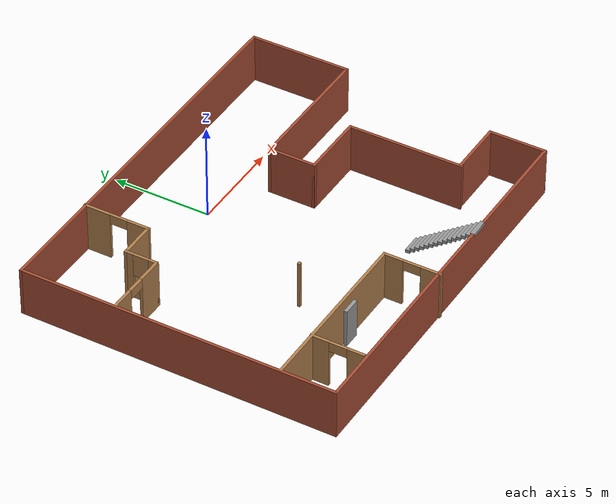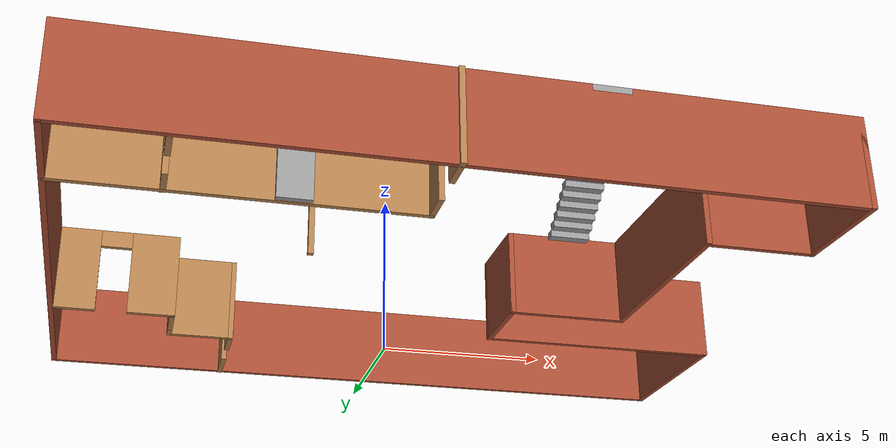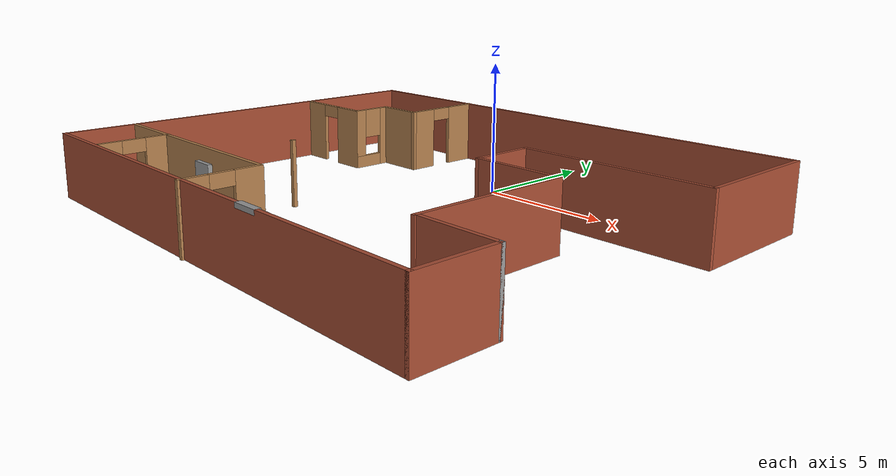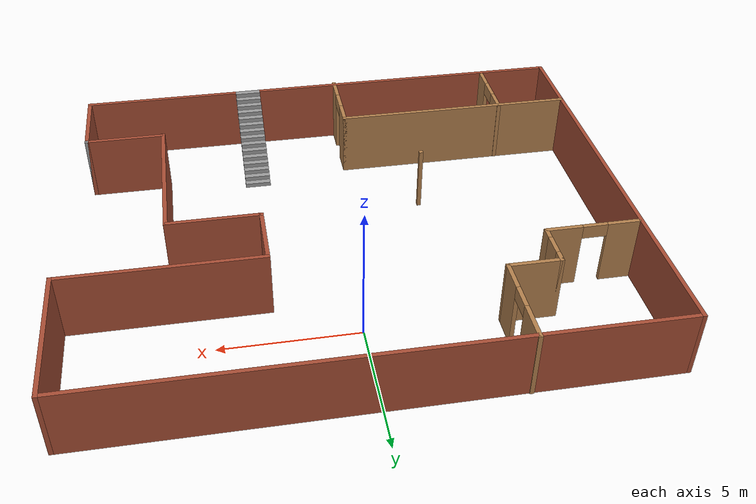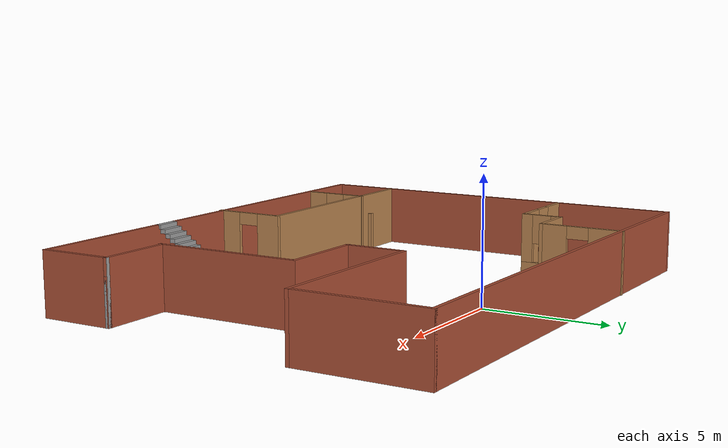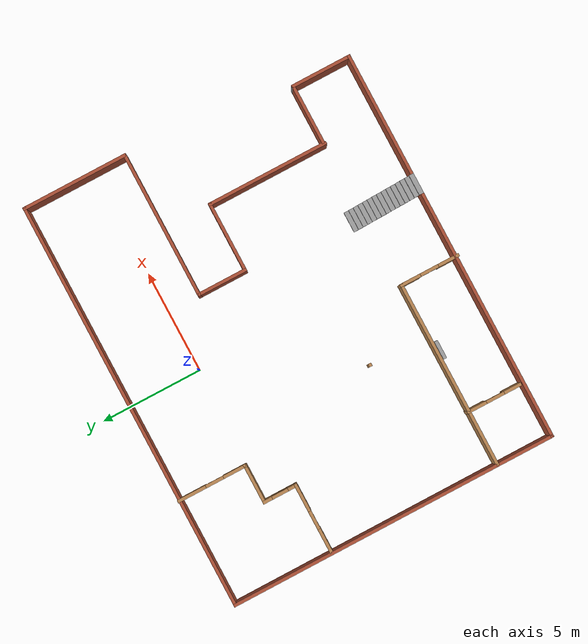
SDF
<?xml version='1.0'?>
<sdf version='1.7'>
  <model name='KoLabHouse'>
    <pose>-0.015702 -4.57944 0 0 -0 0</pose>
    <link name='Door_3'>
      <collision name='Door_3_Collision'>
        <geometry>
          <box>
            <size>0.9 0.17 2</size>
          </box>
        </geometry>
        <pose>0 0 1 0 -0 0</pose>
      </collision>
      <visual name='Door_3_Visual'>
        <pose>0 0 1 0 -0 0</pose>
        <geometry>
          <box>
            <size>0.9 0.17 2</size>
          </box>
        </geometry>
        <material>
          <script>
            <uri>file://media/materials/scripts/gazebo.material</uri>
            <name>Gazebo/Grey</name>
          </script>
        </material>
      </visual>
      <pose>-4.31656 -5.45643 0 0 -0 0</pose>
    </link>
    <link name='Stairs_0'>
      <visual name='Stairs_0_Visual_0'>
        <pose>2.76269 -4.71817 0.083333 0 -0 0</pose>
        <geometry>
          <box>
            <size>1 0.233333 0.166667</size>
          </box>
        </geometry>
        <material>
          <script>
            <uri>file://media/materials/scripts/gazebo.material</uri>
            <name>Gazebo/Grey</name>
          </script>
          <ambient>1 1 1 1</ambient>
        </material>
        <meta>
          <layer>0</layer>
        </meta>
      </visual>
      <collision name='Stairs_0_Collision_0'>
        <geometry>
          <box>
            <size>1 0.233333 0.166667</size>
          </box>
        </geometry>
        <pose>2.76269 -4.71817 0.083333 0 -0 0</pose>
      </collision>
      <visual name='Stairs_0_Visual_1'>
        <pose>2.76269 -4.95151 0.25 0 -0 0</pose>
        <geometry>
          <box>
            <size>1 0.233333 0.166667</size>
          </box>
        </geometry>
        <material>
          <script>
            <uri>file://media/materials/scripts/gazebo.material</uri>
            <name>Gazebo/Grey</name>
          </script>
          <ambient>1 1 1 1</ambient>
        </material>
        <meta>
          <layer>0</layer>
        </meta>
      </visual>
      <collision name='Stairs_0_Collision_1'>
        <geometry>
          <box>
            <size>1 0.233333 0.166667</size>
          </box>
        </geometry>
        <pose>2.76269 -4.95151 0.25 0 -0 0</pose>
      </collision>
      <visual name='Stairs_0_Visual_2'>
        <pose>2.76269 -5.18484 0.416667 0 -0 0</pose>
        <geometry>
          <box>
            <size>1 0.233333 0.166667</size>
          </box>
        </geometry>
        <material>
          <script>
            <uri>file://media/materials/scripts/gazebo.material</uri>
            <name>Gazebo/Grey</name>
          </script>
          <ambient>1 1 1 1</ambient>
        </material>
        <meta>
          <layer>0</layer>
        </meta>
      </visual>
      <collision name='Stairs_0_Collision_2'>
        <geometry>
          <box>
            <size>1 0.233333 0.166667</size>
          </box>
        </geometry>
        <pose>2.76269 -5.18484 0.416667 0 -0 0</pose>
      </collision>
      <visual name='Stairs_0_Visual_3'>
        <pose>2.76269 -5.41817 0.583333 0 -0 0</pose>
        <geometry>
          <box>
            <size>1 0.233333 0.166667</size>
          </box>
        </geometry>
        <material>
          <script>
            <uri>file://media/materials/scripts/gazebo.material</uri>
            <name>Gazebo/Grey</name>
          </script>
          <ambient>1 1 1 1</ambient>
        </material>
        <meta>
          <layer>0</layer>
        </meta>
      </visual>
      <collision name='Stairs_0_Collision_3'>
        <geometry>
          <box>
            <size>1 0.233333 0.166667</size>
          </box>
        </geometry>
        <pose>2.76269 -5.41817 0.583333 0 -0 0</pose>
      </collision>
      <visual name='Stairs_0_Visual_4'>
        <pose>2.76269 -5.65151 0.75 0 -0 0</pose>
        <geometry>
          <box>
            <size>1 0.233333 0.166667</size>
          </box>
        </geometry>
        <material>
          <script>
            <uri>file://media/materials/scripts/gazebo.material</uri>
            <name>Gazebo/Grey</name>
          </script>
          <ambient>1 1 1 1</ambient>
        </material>
        <meta>
          <layer>0</layer>
        </meta>
      </visual>
      <collision name='Stairs_0_Collision_4'>
        <geometry>
          <box>
            <size>1 0.233333 0.166667</size>
          </box>
        </geometry>
        <pose>2.76269 -5.65151 0.75 0 -0 0</pose>
      </collision>
      <visual name='Stairs_0_Visual_5'>
        <pose>2.76269 -5.88484 0.916667 0 -0 0</pose>
        <geometry>
          <box>
            <size>1 0.233333 0.166667</size>
          </box>
        </geometry>
        <material>
          <script>
            <uri>file://media/materials/scripts/gazebo.material</uri>
            <name>Gazebo/Grey</name>
          </script>
          <ambient>1 1 1 1</ambient>
        </material>
        <meta>
          <layer>0</layer>
        </meta>
      </visual>
      <collision name='Stairs_0_Collision_5'>
        <geometry>
          <box>
            <size>1 0.233333 0.166667</size>
          </box>
        </geometry>
        <pose>2.76269 -5.88484 0.916667 0 -0 0</pose>
      </collision>
      <visual name='Stairs_0_Visual_6'>
        <pose>2.76269 -6.11817 1.08333 0 -0 0</pose>
        <geometry>
          <box>
            <size>1 0.233333 0.166667</size>
          </box>
        </geometry>
        <material>
          <script>
            <uri>file://media/materials/scripts/gazebo.material</uri>
            <name>Gazebo/Grey</name>
          </script>
          <ambient>1 1 1 1</ambient>
        </material>
        <meta>
          <layer>0</layer>
        </meta>
      </visual>
      <collision name='Stairs_0_Collision_6'>
        <geometry>
          <box>
            <size>1 0.233333 0.166667</size>
          </box>
        </geometry>
        <pose>2.76269 -6.11817 1.08333 0 -0 0</pose>
      </collision>
      <visual name='Stairs_0_Visual_7'>
        <pose>2.76269 -6.35151 1.25 0 -0 0</pose>
        <geometry>
          <box>
            <size>1 0.233333 0.166667</size>
          </box>
        </geometry>
        <material>
          <script>
            <uri>file://media/materials/scripts/gazebo.material</uri>
            <name>Gazebo/Grey</name>
          </script>
          <ambient>1 1 1 1</ambient>
        </material>
        <meta>
          <layer>0</layer>
        </meta>
      </visual>
      <collision name='Stairs_0_Collision_7'>
        <geometry>
          <box>
            <size>1 0.233333 0.166667</size>
          </box>
        </geometry>
        <pose>2.76269 -6.35151 1.25 0 -0 0</pose>
      </collision>
      <visual name='Stairs_0_Visual_8'>
        <pose>2.76269 -6.58484 1.41667 0 -0 0</pose>
        <geometry>
          <box>
            <size>1 0.233333 0.166667</size>
          </box>
        </geometry>
        <material>
          <script>
            <uri>file://media/materials/scripts/gazebo.material</uri>
            <name>Gazebo/Grey</name>
          </script>
          <ambient>1 1 1 1</ambient>
        </material>
        <meta>
          <layer>0</layer>
        </meta>
      </visual>
      <collision name='Stairs_0_Collision_8'>
        <geometry>
          <box>
            <size>1 0.233333 0.166667</size>
          </box>
        </geometry>
        <pose>2.76269 -6.58484 1.41667 0 -0 0</pose>
      </collision>
      <visual name='Stairs_0_Visual_9'>
        <pose>2.76269 -6.81817 1.58333 0 -0 0</pose>
        <geometry>
          <box>
            <size>1 0.233333 0.166667</size>
          </box>
        </geometry>
        <material>
          <script>
            <uri>file://media/materials/scripts/gazebo.material</uri>
            <name>Gazebo/Grey</name>
          </script>
          <ambient>1 1 1 1</ambient>
        </material>
        <meta>
          <layer>0</layer>
        </meta>
      </visual>
      <collision name='Stairs_0_Collision_9'>
        <geometry>
          <box>
            <size>1 0.233333 0.166667</size>
          </box>
        </geometry>
        <pose>2.76269 -6.81817 1.58333 0 -0 0</pose>
      </collision>
      <visual name='Stairs_0_Visual_10'>
        <pose>2.76269 -7.05151 1.75 0 -0 0</pose>
        <geometry>
          <box>
            <size>1 0.233333 0.166667</size>
          </box>
        </geometry>
        <material>
          <script>
            <uri>file://media/materials/scripts/gazebo.material</uri>
            <name>Gazebo/Grey</name>
          </script>
          <ambient>1 1 1 1</ambient>
        </material>
        <meta>
          <layer>0</layer>
        </meta>
      </visual>
      <collision name='Stairs_0_Collision_10'>
        <geometry>
          <box>
            <size>1 0.233333 0.166667</size>
          </box>
        </geometry>
        <pose>2.76269 -7.05151 1.75 0 -0 0</pose>
      </collision>
      <visual name='Stairs_0_Visual_11'>
        <pose>2.76269 -7.28484 1.91667 0 -0 0</pose>
        <geometry>
          <box>
            <size>1 0.233333 0.166667</size>
          </box>
        </geometry>
        <material>
          <script>
            <uri>file://media/materials/scripts/gazebo.material</uri>
            <name>Gazebo/Grey</name>
          </script>
          <ambient>1 1 1 1</ambient>
        </material>
        <meta>
          <layer>0</layer>
        </meta>
      </visual>
      <collision name='Stairs_0_Collision_11'>
        <geometry>
          <box>
            <size>1 0.233333 0.166667</size>
          </box>
        </geometry>
        <pose>2.76269 -7.28484 1.91667 0 -0 0</pose>
      </collision>
      <visual name='Stairs_0_Visual_12'>
        <pose>2.76269 -7.51817 2.08333 0 -0 0</pose>
        <geometry>
          <box>
            <size>1 0.233333 0.166667</size>
          </box>
        </geometry>
        <material>
          <script>
            <uri>file://media/materials/scripts/gazebo.material</uri>
            <name>Gazebo/Grey</name>
          </script>
          <ambient>1 1 1 1</ambient>
        </material>
        <meta>
          <layer>0</layer>
        </meta>
      </visual>
      <collision name='Stairs_0_Collision_12'>
        <geometry>
          <box>
            <size>1 0.233333 0.166667</size>
          </box>
        </geometry>
        <pose>2.76269 -7.51817 2.08333 0 -0 0</pose>
      </collision>
      <visual name='Stairs_0_Visual_13'>
        <pose>2.76269 -7.75151 2.25 0 -0 0</pose>
        <geometry>
          <box>
            <size>1 0.233333 0.166667</size>
          </box>
        </geometry>
        <material>
          <script>
            <uri>file://media/materials/scripts/gazebo.material</uri>
            <name>Gazebo/Grey</name>
          </script>
          <ambient>1 1 1 1</ambient>
        </material>
        <meta>
          <layer>0</layer>
        </meta>
      </visual>
      <collision name='Stairs_0_Collision_13'>
        <geometry>
          <box>
            <size>1 0.233333 0.166667</size>
          </box>
        </geometry>
        <pose>2.76269 -7.75151 2.25 0 -0 0</pose>
      </collision>
      <visual name='Stairs_0_Visual_14'>
        <pose>2.76269 -7.98484 2.41667 0 -0 0</pose>
        <geometry>
          <box>
            <size>1 0.233333 0.166667</size>
          </box>
        </geometry>
        <material>
          <script>
            <uri>file://media/materials/scripts/gazebo.material</uri>
            <name>Gazebo/Grey</name>
          </script>
          <ambient>1 1 1 1</ambient>
        </material>
        <meta>
          <layer>0</layer>
        </meta>
      </visual>
      <collision name='Stairs_0_Collision_14'>
        <geometry>
          <box>
            <size>1 0.233333 0.166667</size>
          </box>
        </geometry>
        <pose>2.76269 -7.98484 2.41667 0 -0 0</pose>
      </collision>
    </link>
    <link name='Wall_10'>
      <collision name='Wall_10_Collision'>
        <geometry>
          <box>
            <size>3.5 0.15 2.5</size>
          </box>
        </geometry>
        <pose>0 0 1.25 0 -0 0</pose>
      </collision>
      <visual name='Wall_10_Visual'>
        <pose>0 0 1.25 0 -0 0</pose>
        <geometry>
          <box>
            <size>3.5 0.15 2.5</size>
          </box>
        </geometry>
        <material>
          <script>
            <uri>file://media/materials/scripts/gazebo.material</uri>
            <name>Gazebo/Bricks</name>
          </script>
          <ambient>1 1 1 1</ambient>
        </material>
        <meta>
          <layer>0</layer>
        </meta>
      </visual>
      <pose>4.65642 0.624103 0 0 -0 0</pose>
    </link>
    <link name='Wall_11'>
      <collision name='Wall_11_Collision'>
        <geometry>
          <box>
            <size>6 0.15 2.5</size>
          </box>
        </geometry>
        <pose>0 0 1.25 0 -0 0</pose>
      </collision>
      <visual name='Wall_11_Visual'>
        <pose>0 0 1.25 0 -0 0</pose>
        <geometry>
          <box>
            <size>6 0.15 2.5</size>
          </box>
        </geometry>
        <material>
          <script>
            <uri>file://media/materials/scripts/gazebo.material</uri>
            <name>Gazebo/Bricks</name>
          </script>
          <ambient>1 1 1 1</ambient>
        </material>
        <meta>
          <layer>0</layer>
        </meta>
      </visual>
      <pose>6.33142 -2.3009 0 0 -0 -1.5708</pose>
    </link>
    <link name='Wall_29'>
      <collision name='Wall_29_Collision'>
        <geometry>
          <box>
            <size>16.25 0.15 2.5</size>
          </box>
        </geometry>
        <pose>0 0 1.25 0 -0 0</pose>
      </collision>
      <visual name='Wall_29_Visual'>
        <pose>0 0 1.25 0 -0 0</pose>
        <geometry>
          <box>
            <size>16.25 0.15 2.5</size>
          </box>
        </geometry>
        <material>
          <script>
            <uri>file://media/materials/scripts/gazebo.material</uri>
            <name>Gazebo/Bricks</name>
          </script>
          <ambient>1 1 1 1</ambient>
        </material>
        <meta>
          <layer>0</layer>
        </meta>
      </visual>
      <pose>-10.0814 0.024103 0 0 -0 -1.5708</pose>
    </link>
    <link name='Wall_30'>
      <collision name='Wall_30_Collision'>
        <geometry>
          <box>
            <size>19.5 0.15 2.5</size>
          </box>
        </geometry>
        <pose>0 0 1.25 0 -0 0</pose>
      </collision>
      <visual name='Wall_30_Visual'>
        <pose>0 0 1.25 0 -0 0</pose>
        <geometry>
          <box>
            <size>19.5 0.15 2.5</size>
          </box>
        </geometry>
        <material>
          <script>
            <uri>file://media/materials/scripts/gazebo.material</uri>
            <name>Gazebo/Bricks</name>
          </script>
          <ambient>1 1 1 1</ambient>
        </material>
        <meta>
          <layer>0</layer>
        </meta>
      </visual>
      <pose>-0.406424 -8.0259 0 0 -0 0</pose>
    </link>
    <link name='Wall_31'>
      <collision name='Wall_31_Collision'>
        <geometry>
          <box>
            <size>3 0.15 2.5</size>
          </box>
        </geometry>
        <pose>0 0 1.25 0 -0 0</pose>
      </collision>
      <visual name='Wall_31_Visual'>
        <pose>0 0 1.25 0 -0 0</pose>
        <geometry>
          <box>
            <size>3 0.15 2.5</size>
          </box>
        </geometry>
        <material>
          <script>
            <uri>file://media/materials/scripts/gazebo.material</uri>
            <name>Gazebo/Bricks</name>
          </script>
          <ambient>1 1 1 1</ambient>
        </material>
        <meta>
          <layer>0</layer>
        </meta>
      </visual>
      <pose>9.26858 -6.6009 0 0 -0 1.5708</pose>
    </link>
    <link name='Wall_32'>
      <collision name='Wall_32_Collision'>
        <geometry>
          <box>
            <size>0.15 0.15 2.5</size>
          </box>
        </geometry>
        <pose>0 0 1.25 0 -0 0</pose>
      </collision>
      <visual name='Wall_32_Visual'>
        <pose>0 0 1.25 0 -0 0</pose>
        <geometry>
          <box>
            <size>0.15 0.15 2.5</size>
          </box>
        </geometry>
        <material>
          <script>
            <uri>file://media/materials/scripts/gazebo.material</uri>
            <name>Gazebo/Grey</name>
          </script>
          <ambient>1 1 1 1</ambient>
        </material>
        <meta>
          <layer>0</layer>
        </meta>
      </visual>
      <pose>9.26858 -5.1759 0 0 -0 0</pose>
    </link>
    <link name='Wall_37'>
      <collision name='Wall_37_Collision'>
        <geometry>
          <box>
            <size>0.15 0.15 2.5</size>
          </box>
        </geometry>
        <pose>0 0 1.25 0 -0 0</pose>
      </collision>
      <visual name='Wall_37_Visual'>
        <pose>0 0 1.25 0 -0 0</pose>
        <geometry>
          <box>
            <size>0.15 0.15 2.5</size>
          </box>
        </geometry>
        <material>
          <script>
            <uri>file://media/materials/scripts/gazebo.material</uri>
            <name>Gazebo/Wood</name>
          </script>
          <ambient>1 1 1 1</ambient>
        </material>
        <meta>
          <layer>0</layer>
        </meta>
      </visual>
      <pose>-3.43142 -2.3259 0 0 -0 0</pose>
    </link>
    <link name='Wall_44'>
      <collision name='Wall_44_Collision'>
        <geometry>
          <box>
            <size>3 0.15 2.5</size>
          </box>
        </geometry>
        <pose>0 0 1.25 0 -0 0</pose>
      </collision>
      <visual name='Wall_44_Visual'>
        <pose>0 0 1.25 0 -0 0</pose>
        <geometry>
          <box>
            <size>3 0.15 2.5</size>
          </box>
        </geometry>
        <material>
          <script>
            <uri>file://media/materials/scripts/gazebo.material</uri>
            <name>Gazebo/Bricks</name>
          </script>
          <ambient>1 1 1 1</ambient>
        </material>
        <meta>
          <layer>0</layer>
        </meta>
      </visual>
      <pose>7.84358 -5.1759 0 0 -0 3.14159</pose>
    </link>
    <link name='Wall_49'>
      <pose>-4.77775 6.43485 0 0 -0 -1.5708</pose>
      <visual name='Wall_49_Visual_0'>
        <pose>-1.03616 0 1.25 0 -0 0</pose>
        <geometry>
          <box>
            <size>1.42767 0.15 2.5</size>
          </box>
        </geometry>
        <material>
          <script>
            <uri>file://media/materials/scripts/gazebo.material</uri>
            <name>Gazebo/Wood</name>
          </script>
          <ambient>1 1 1 1</ambient>
        </material>
        <meta>
          <layer>0</layer>
        </meta>
      </visual>
      <collision name='Wall_49_Collision_0'>
        <geometry>
          <box>
            <size>1.42767 0.15 2.5</size>
          </box>
        </geometry>
        <pose>-1.03616 0 1.25 0 -0 0</pose>
      </collision>
      <visual name='Wall_49_Visual_1'>
        <pose>1.16384 0 1.25 0 -0 0</pose>
        <geometry>
          <box>
            <size>1.17233 0.15 2.5</size>
          </box>
        </geometry>
        <material>
          <script>
            <uri>file://media/materials/scripts/gazebo.material</uri>
            <name>Gazebo/Wood</name>
          </script>
          <ambient>1 1 1 1</ambient>
        </material>
        <meta>
          <layer>0</layer>
        </meta>
      </visual>
      <collision name='Wall_49_Collision_1'>
        <geometry>
          <box>
            <size>1.17233 0.15 2.5</size>
          </box>
        </geometry>
        <pose>1.16384 0 1.25 0 -0 0</pose>
      </collision>
      <visual name='Wall_49_Visual_2'>
        <pose>0.127674 0 2.25 0 -0 0</pose>
        <geometry>
          <box>
            <size>0.9 0.15 0.5</size>
          </box>
        </geometry>
        <material>
          <script>
            <uri>file://media/materials/scripts/gazebo.material</uri>
            <name>Gazebo/Wood</name>
          </script>
          <ambient>1 1 1 1</ambient>
        </material>
        <meta>
          <layer>0</layer>
        </meta>
      </visual>
      <collision name='Wall_49_Collision_2'>
        <geometry>
          <box>
            <size>0.9 0.15 0.5</size>
          </box>
        </geometry>
        <pose>0.127674 0 2.25 0 -0 0</pose>
      </collision>
    </link>
    <link name='Wall_50'>
      <collision name='Wall_50_Collision'>
        <geometry>
          <box>
            <size>2 0.15 2.5</size>
          </box>
        </geometry>
        <pose>0 0 1.25 0 -0 0</pose>
      </collision>
      <visual name='Wall_50_Visual'>
        <pose>0 0 1.25 0 -0 0</pose>
        <geometry>
          <box>
            <size>2 0.15 2.5</size>
          </box>
        </geometry>
        <material>
          <script>
            <uri>file://media/materials/scripts/gazebo.material</uri>
            <name>Gazebo/Wood</name>
          </script>
          <ambient>1 1 1 1</ambient>
        </material>
        <meta>
          <layer>0</layer>
        </meta>
      </visual>
      <pose>-5.70275 4.75985 0 0 -0 3.14159</pose>
    </link>
    <link name='Wall_51'>
      <pose>-6.62775 3.95985 0 0 -0 -1.5708</pose>
      <visual name='Wall_51_Visual_0'>
        <pose>-0.639953 0 1.25 0 -0 0</pose>
        <geometry>
          <box>
            <size>0.470095 0.15 2.5</size>
          </box>
        </geometry>
        <material>
          <script>
            <uri>file://media/materials/scripts/gazebo.material</uri>
            <name>Gazebo/Wood</name>
          </script>
          <ambient>1 1 1 1</ambient>
        </material>
        <meta>
          <layer>0</layer>
        </meta>
      </visual>
      <collision name='Wall_51_Collision_0'>
        <geometry>
          <box>
            <size>0.470095 0.15 2.5</size>
          </box>
        </geometry>
        <pose>-0.639953 0 1.25 0 -0 0</pose>
      </collision>
      <visual name='Wall_51_Visual_1'>
        <pose>0.235047 0 0.25 0 -0 0</pose>
        <geometry>
          <box>
            <size>1.27991 0.15 0.5</size>
          </box>
        </geometry>
        <material>
          <script>
            <uri>file://media/materials/scripts/gazebo.material</uri>
            <name>Gazebo/Wood</name>
          </script>
          <ambient>1 1 1 1</ambient>
        </material>
        <meta>
          <layer>0</layer>
        </meta>
      </visual>
      <collision name='Wall_51_Collision_1'>
        <geometry>
          <box>
            <size>1.27991 0.15 0.5</size>
          </box>
        </geometry>
        <pose>0.235047 0 0.25 0 -0 0</pose>
      </collision>
      <visual name='Wall_51_Visual_2'>
        <pose>0.635047 0 1.5 0 -0 0</pose>
        <geometry>
          <box>
            <size>0.479905 0.15 2</size>
          </box>
        </geometry>
        <material>
          <script>
            <uri>file://media/materials/scripts/gazebo.material</uri>
            <name>Gazebo/Wood</name>
          </script>
          <ambient>1 1 1 1</ambient>
        </material>
        <meta>
          <layer>0</layer>
        </meta>
      </visual>
      <collision name='Wall_51_Collision_2'>
        <geometry>
          <box>
            <size>0.479905 0.15 2</size>
          </box>
        </geometry>
        <pose>0.635047 0 1.5 0 -0 0</pose>
      </collision>
      <visual name='Wall_51_Visual_3'>
        <pose>-0.004905 0 1.9 0 -0 0</pose>
        <geometry>
          <box>
            <size>0.8 0.15 1.2</size>
          </box>
        </geometry>
        <material>
          <script>
            <uri>file://media/materials/scripts/gazebo.material</uri>
            <name>Gazebo/Wood</name>
          </script>
          <ambient>1 1 1 1</ambient>
        </material>
        <meta>
          <layer>0</layer>
        </meta>
      </visual>
      <collision name='Wall_51_Collision_3'>
        <geometry>
          <box>
            <size>0.8 0.15 1.2</size>
          </box>
        </geometry>
        <pose>-0.004905 0 1.9 0 -0 0</pose>
      </collision>
    </link>
    <link name='Wall_52'>
      <pose>-8.30275 3.15985 0 0 -0 3.14159</pose>
      <visual name='Wall_52_Visual_0'>
        <pose>-1.0566 0 1.25 0 -0 0</pose>
        <geometry>
          <box>
            <size>1.38679 0.15 2.5</size>
          </box>
        </geometry>
        <material>
          <script>
            <uri>file://media/materials/scripts/gazebo.material</uri>
            <name>Gazebo/Wood</name>
          </script>
          <ambient>1 1 1 1</ambient>
        </material>
        <meta>
          <layer>0</layer>
        </meta>
      </visual>
      <collision name='Wall_52_Collision_0'>
        <geometry>
          <box>
            <size>1.38679 0.15 2.5</size>
          </box>
        </geometry>
        <pose>-1.0566 0 1.25 0 -0 0</pose>
      </collision>
      <visual name='Wall_52_Visual_1'>
        <pose>1.1434 0 1.25 0 -0 0</pose>
        <geometry>
          <box>
            <size>1.21321 0.15 2.5</size>
          </box>
        </geometry>
        <material>
          <script>
            <uri>file://media/materials/scripts/gazebo.material</uri>
            <name>Gazebo/Wood</name>
          </script>
          <ambient>1 1 1 1</ambient>
        </material>
        <meta>
          <layer>0</layer>
        </meta>
      </visual>
      <collision name='Wall_52_Collision_1'>
        <geometry>
          <box>
            <size>1.21321 0.15 2.5</size>
          </box>
        </geometry>
        <pose>1.1434 0 1.25 0 -0 0</pose>
      </collision>
      <visual name='Wall_52_Visual_2'>
        <pose>0.086793 0 2.25 0 -0 0</pose>
        <geometry>
          <box>
            <size>0.9 0.15 0.5</size>
          </box>
        </geometry>
        <material>
          <script>
            <uri>file://media/materials/scripts/gazebo.material</uri>
            <name>Gazebo/Wood</name>
          </script>
          <ambient>1 1 1 1</ambient>
        </material>
        <meta>
          <layer>0</layer>
        </meta>
      </visual>
      <collision name='Wall_52_Collision_2'>
        <geometry>
          <box>
            <size>0.9 0.15 0.5</size>
          </box>
        </geometry>
        <pose>0.086793 0 2.25 0 -0 0</pose>
      </collision>
    </link>
    <link name='Wall_55'>
      <collision name='Wall_55_Collision'>
        <geometry>
          <box>
            <size>9.25 0.15 2.5</size>
          </box>
        </geometry>
        <pose>0 0 1.25 0 -0 0</pose>
      </collision>
      <visual name='Wall_55_Visual'>
        <pose>0 0 1.25 0 -0 0</pose>
        <geometry>
          <box>
            <size>9.25 0.15 2.5</size>
          </box>
        </geometry>
        <material>
          <script>
            <uri>file://media/materials/scripts/gazebo.material</uri>
            <name>Gazebo/Wood</name>
          </script>
          <ambient>1 1 1 1</ambient>
        </material>
        <meta>
          <layer>0</layer>
        </meta>
      </visual>
      <pose>-5.48373 -5.25985 0 0 -0 0</pose>
    </link>
    <link name='Wall_58'>
      <pose>-0.933727 -6.68485 0 0 -0 -1.5708</pose>
      <visual name='Wall_58_Visual_0'>
        <pose>-0.978932 0 1.25 0 -0 0</pose>
        <geometry>
          <box>
            <size>1.04214 0.15 2.5</size>
          </box>
        </geometry>
        <material>
          <script>
            <uri>file://media/materials/scripts/gazebo.material</uri>
            <name>Gazebo/Wood</name>
          </script>
          <ambient>1 1 1 1</ambient>
        </material>
        <meta>
          <layer>0</layer>
        </meta>
      </visual>
      <collision name='Wall_58_Collision_0'>
        <geometry>
          <box>
            <size>1.04214 0.15 2.5</size>
          </box>
        </geometry>
        <pose>-0.978932 0 1.25 0 -0 0</pose>
      </collision>
      <visual name='Wall_58_Visual_1'>
        <pose>0.971068 0 1.25 0 -0 0</pose>
        <geometry>
          <box>
            <size>1.05787 0.15 2.5</size>
          </box>
        </geometry>
        <material>
          <script>
            <uri>file://media/materials/scripts/gazebo.material</uri>
            <name>Gazebo/Wood</name>
          </script>
          <ambient>1 1 1 1</ambient>
        </material>
        <meta>
          <layer>0</layer>
        </meta>
      </visual>
      <collision name='Wall_58_Collision_1'>
        <geometry>
          <box>
            <size>1.05787 0.15 2.5</size>
          </box>
        </geometry>
        <pose>0.971068 0 1.25 0 -0 0</pose>
      </collision>
      <visual name='Wall_58_Visual_2'>
        <pose>-0.007865 0 2.25 0 -0 0</pose>
        <geometry>
          <box>
            <size>0.9 0.15 0.5</size>
          </box>
        </geometry>
        <material>
          <script>
            <uri>file://media/materials/scripts/gazebo.material</uri>
            <name>Gazebo/Wood</name>
          </script>
          <ambient>1 1 1 1</ambient>
        </material>
        <meta>
          <layer>0</layer>
        </meta>
      </visual>
      <collision name='Wall_58_Collision_2'>
        <geometry>
          <box>
            <size>0.9 0.15 0.5</size>
          </box>
        </geometry>
        <pose>-0.007865 0 2.25 0 -0 0</pose>
      </collision>
    </link>
    <link name='Wall_6'>
      <collision name='Wall_6_Collision'>
        <geometry>
          <box>
            <size>20.3128 0.15 2.5</size>
          </box>
        </geometry>
        <pose>0 0 1.25 0 -0 0</pose>
      </collision>
      <visual name='Wall_6_Visual'>
        <pose>0 0 1.25 0 -0 0</pose>
        <geometry>
          <box>
            <size>20.3128 0.15 2.5</size>
          </box>
        </geometry>
        <material>
          <script>
            <uri>file://media/materials/scripts/gazebo.material</uri>
            <name>Gazebo/Bricks</name>
          </script>
          <ambient>1 1 1 1</ambient>
        </material>
        <meta>
          <layer>0</layer>
        </meta>
      </visual>
      <pose>0 8.0741 0 0 -0 0</pose>
    </link>
    <link name='Wall_60'>
      <pose>-7.36477 -6.54082 0 0 -0 -1.5708</pose>
      <visual name='Wall_60_Visual_0'>
        <pose>-0.8851 0 1.25 0 -0 0</pose>
        <geometry>
          <box>
            <size>0.9798 0.15 2.5</size>
          </box>
        </geometry>
        <material>
          <script>
            <uri>file://media/materials/scripts/gazebo.material</uri>
            <name>Gazebo/Wood</name>
          </script>
          <ambient>1 1 1 1</ambient>
        </material>
        <meta>
          <layer>0</layer>
        </meta>
      </visual>
      <collision name='Wall_60_Collision_0'>
        <geometry>
          <box>
            <size>0.9798 0.15 2.5</size>
          </box>
        </geometry>
        <pose>-0.8851 0 1.25 0 -0 0</pose>
      </collision>
      <visual name='Wall_60_Visual_1'>
        <pose>0.9399 0 1.25 0 -0 0</pose>
        <geometry>
          <box>
            <size>0.8702 0.15 2.5</size>
          </box>
        </geometry>
        <material>
          <script>
            <uri>file://media/materials/scripts/gazebo.material</uri>
            <name>Gazebo/Wood</name>
          </script>
          <ambient>1 1 1 1</ambient>
        </material>
        <meta>
          <layer>0</layer>
        </meta>
      </visual>
      <collision name='Wall_60_Collision_1'>
        <geometry>
          <box>
            <size>0.8702 0.15 2.5</size>
          </box>
        </geometry>
        <pose>0.9399 0 1.25 0 -0 0</pose>
      </collision>
      <visual name='Wall_60_Visual_2'>
        <pose>0.0548 0 2.25 0 -0 0</pose>
        <geometry>
          <box>
            <size>0.9 0.15 0.5</size>
          </box>
        </geometry>
        <material>
          <script>
            <uri>file://media/materials/scripts/gazebo.material</uri>
            <name>Gazebo/Wood</name>
          </script>
          <ambient>1 1 1 1</ambient>
        </material>
        <meta>
          <layer>0</layer>
        </meta>
      </visual>
      <collision name='Wall_60_Collision_2'>
        <geometry>
          <box>
            <size>0.9 0.15 0.5</size>
          </box>
        </geometry>
        <pose>0.0548 0 2.25 0 -0 0</pose>
      </collision>
    </link>
    <link name='Wall_7'>
      <collision name='Wall_7_Collision'>
        <geometry>
          <box>
            <size>5.25 0.15 2.5</size>
          </box>
        </geometry>
        <pose>0 0 1.25 0 -0 0</pose>
      </collision>
      <visual name='Wall_7_Visual'>
        <pose>0 0 1.25 0 -0 0</pose>
        <geometry>
          <box>
            <size>5.25 0.15 2.5</size>
          </box>
        </geometry>
        <material>
          <script>
            <uri>file://media/materials/scripts/gazebo.material</uri>
            <name>Gazebo/Bricks</name>
          </script>
          <ambient>1 1 1 1</ambient>
        </material>
        <meta>
          <layer>0</layer>
        </meta>
      </visual>
      <pose>10.0814 5.5241 0 0 -0 -1.5708</pose>
    </link>
    <link name='Wall_8'>
      <collision name='Wall_8_Collision'>
        <geometry>
          <box>
            <size>7.25 0.15 2.5</size>
          </box>
        </geometry>
        <pose>0 0 1.25 0 -0 0</pose>
      </collision>
      <visual name='Wall_8_Visual'>
        <pose>0 0 1.25 0 -0 0</pose>
        <geometry>
          <box>
            <size>7.25 0.15 2.5</size>
          </box>
        </geometry>
        <material>
          <script>
            <uri>file://media/materials/scripts/gazebo.material</uri>
            <name>Gazebo/Bricks</name>
          </script>
          <ambient>1 1 1 1</ambient>
        </material>
        <meta>
          <layer>0</layer>
        </meta>
      </visual>
      <pose>6.53142 2.9741 0 0 -0 3.14159</pose>
    </link>
    <link name='Wall_9'>
      <collision name='Wall_9_Collision'>
        <geometry>
          <box>
            <size>2.5 0.15 2.5</size>
          </box>
        </geometry>
        <pose>0 0 1.25 0 -0 0</pose>
      </collision>
      <visual name='Wall_9_Visual'>
        <pose>0 0 1.25 0 -0 0</pose>
        <geometry>
          <box>
            <size>2.5 0.15 2.5</size>
          </box>
        </geometry>
        <material>
          <script>
            <uri>file://media/materials/scripts/gazebo.material</uri>
            <name>Gazebo/Bricks</name>
          </script>
          <ambient>1 1 1 1</ambient>
        </material>
        <meta>
          <layer>0</layer>
        </meta>
      </visual>
      <pose>2.98142 1.7991 0 0 -0 -1.5708</pose>
    </link>
    <static>1</static>
  </model>
</sdf>
